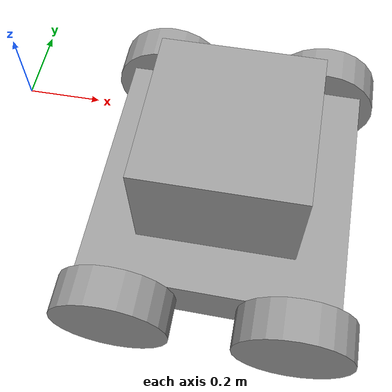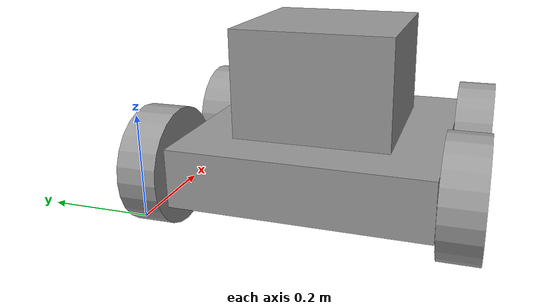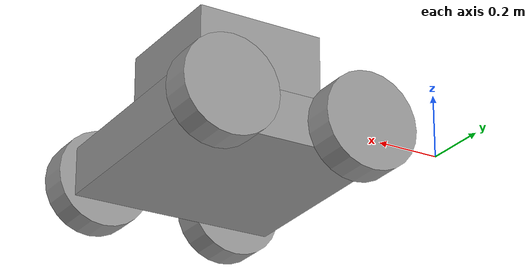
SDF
<?xml version='1.0'?>
<sdf version='1.6'>
  <model name='JetBot'>
    <link name='link_0'>
      <inertial>
        <mass>1</mass>
        <inertia>
          <ixx>0.166667</ixx>
          <ixy>0</ixy>
          <ixz>0</ixz>
          <iyy>0.166667</iyy>
          <iyz>0</iyz>
          <izz>0.166667</izz>
        </inertia>
        <pose frame=''>0 0 0 0 -0 0</pose>
      </inertial>
      <pose frame=''>0.603128 -0.202461 -0.058333 0 -0 0</pose>
      <gravity>1</gravity>
      <self_collide>0</self_collide>
      <kinematic>0</kinematic>
      <enable_wind>0</enable_wind>
      <visual name='visual'>
        <pose frame=''>0 0 0 0 0 -0.01</pose>
        <geometry>
          <box>
            <size>0.65 0.65 0.15</size>
          </box>
        </geometry>
        <material>
          <lighting>1</lighting>
          <script>
            <uri>file://media/materials/scripts/gazebo.material</uri>
            <name>Gazebo/Grey</name>
          </script>
          <shader type='vertex'>
            <normal_map>__default__</normal_map>
          </shader>
          <ambient>0.3 0.3 0.3 1</ambient>
          <diffuse>0.7 0.7 0.7 1</diffuse>
          <specular>0.01 0.01 0.01 1</specular>
          <emissive>0 0 0 1</emissive>
        </material>
        <transparency>0</transparency>
        <cast_shadows>1</cast_shadows>
      </visual>
      <collision name='collision'>
        <laser_retro>0</laser_retro>
        <max_contacts>10</max_contacts>
        <pose frame=''>0 0 0 0 -0 0</pose>
        <geometry>
          <box>
            <size>0.65 0.65 0.15</size>
          </box>
        </geometry>
        <surface>
          <friction>
            <ode>
              <mu>1</mu>
              <mu2>1</mu2>
              <fdir1>0 0 0</fdir1>
              <slip1>0</slip1>
              <slip2>0</slip2>
            </ode>
            <torsional>
              <coefficient>1</coefficient>
              <patch_radius>0</patch_radius>
              <surface_radius>0</surface_radius>
              <use_patch_radius>1</use_patch_radius>
              <ode>
                <slip>0</slip>
              </ode>
            </torsional>
          </friction>
          <bounce>
            <restitution_coefficient>0</restitution_coefficient>
            <threshold>1e+06</threshold>
          </bounce>
          <contact>
            <collide_without_contact>0</collide_without_contact>
            <collide_without_contact_bitmask>1</collide_without_contact_bitmask>
            <collide_bitmask>1</collide_bitmask>
            <ode>
              <soft_cfm>0</soft_cfm>
              <soft_erp>0.2</soft_erp>
              <kp>1e+13</kp>
              <kd>1</kd>
              <max_vel>0.01</max_vel>
              <min_depth>0</min_depth>
            </ode>
            <bullet>
              <split_impulse>1</split_impulse>
              <split_impulse_penetration_threshold>-0.01</split_impulse_penetration_threshold>
              <soft_cfm>0</soft_cfm>
              <soft_erp>0.2</soft_erp>
              <kp>1e+13</kp>
              <kd>1</kd>
            </bullet>
          </contact>
        </surface>
      </collision>
    </link>
    <link name='link_4_clone_1_clone'>
      <inertial>
        <mass>1</mass>
        <inertia>
          <ixx>0.145833</ixx>
          <ixy>0</ixy>
          <ixz>0</ixz>
          <iyy>0.145833</iyy>
          <iyz>0</iyz>
          <izz>0.125</izz>
        </inertia>
        <pose frame=''>0 0 0 0 -0 0</pose>
      </inertial>
      <pose frame=''>0.378128 -0.577461 -0.058333 1.5708 -0 0</pose>
      <gravity>1</gravity>
      <self_collide>0</self_collide>
      <kinematic>0</kinematic>
      <enable_wind>0</enable_wind>
      <visual name='visual'>
        <pose frame=''>0 0 0 0 -0 0</pose>
        <geometry>
          <cylinder>
            <radius>0.15</radius>
            <length>0.1</length>
          </cylinder>
        </geometry>
        <material>
          <lighting>1</lighting>
          <script>
            <uri>file://media/materials/scripts/gazebo.material</uri>
            <name>Gazebo/Grey</name>
          </script>
          <shader type='vertex'>
            <normal_map>__default__</normal_map>
          </shader>
          <ambient>0.3 0.3 0.3 1</ambient>
          <diffuse>0.7 0.7 0.7 1</diffuse>
          <specular>0.01 0.01 0.01 1</specular>
          <emissive>0 0 0 1</emissive>
        </material>
        <transparency>0</transparency>
        <cast_shadows>1</cast_shadows>
      </visual>
      <collision name='collision'>
        <laser_retro>0</laser_retro>
        <max_contacts>10</max_contacts>
        <pose frame=''>0 0 0 0 -0 0</pose>
        <geometry>
          <cylinder>
            <radius>0.15</radius>
            <length>0.1</length>
          </cylinder>
        </geometry>
        <surface>
          <friction>
            <ode>
              <mu>1</mu>
              <mu2>1</mu2>
              <fdir1>0 0 0</fdir1>
              <slip1>0</slip1>
              <slip2>0</slip2>
            </ode>
            <torsional>
              <coefficient>1</coefficient>
              <patch_radius>0</patch_radius>
              <surface_radius>0</surface_radius>
              <use_patch_radius>1</use_patch_radius>
              <ode>
                <slip>0</slip>
              </ode>
            </torsional>
          </friction>
          <bounce>
            <restitution_coefficient>0</restitution_coefficient>
            <threshold>1e+06</threshold>
          </bounce>
          <contact>
            <collide_without_contact>0</collide_without_contact>
            <collide_without_contact_bitmask>1</collide_without_contact_bitmask>
            <collide_bitmask>1</collide_bitmask>
            <ode>
              <soft_cfm>0</soft_cfm>
              <soft_erp>0.2</soft_erp>
              <kp>1e+13</kp>
              <kd>1</kd>
              <max_vel>0.01</max_vel>
              <min_depth>0</min_depth>
            </ode>
            <bullet>
              <split_impulse>1</split_impulse>
              <split_impulse_penetration_threshold>-0.01</split_impulse_penetration_threshold>
              <soft_cfm>0</soft_cfm>
              <soft_erp>0.2</soft_erp>
              <kp>1e+13</kp>
              <kd>1</kd>
            </bullet>
          </contact>
        </surface>
      </collision>
    </link>
    <link name='link_4_clone_1_clone_clone'>
      <inertial>
        <mass>1</mass>
        <inertia>
          <ixx>0.145833</ixx>
          <ixy>0</ixy>
          <ixz>0</ixz>
          <iyy>0.145833</iyy>
          <iyz>0</iyz>
          <izz>0.125</izz>
        </inertia>
        <pose frame=''>0 0 0 0 -0 0</pose>
      </inertial>
      <pose frame=''>0.378128 0.172539 -0.058333 1.5708 -0 0</pose>
      <gravity>1</gravity>
      <self_collide>0</self_collide>
      <kinematic>0</kinematic>
      <enable_wind>0</enable_wind>
      <visual name='visual'>
        <pose frame=''>0 0 0 0 -0 0</pose>
        <geometry>
          <cylinder>
            <radius>0.15</radius>
            <length>0.1</length>
          </cylinder>
        </geometry>
        <material>
          <lighting>1</lighting>
          <script>
            <uri>file://media/materials/scripts/gazebo.material</uri>
            <name>Gazebo/Grey</name>
          </script>
          <shader type='vertex'>
            <normal_map>__default__</normal_map>
          </shader>
          <ambient>0.3 0.3 0.3 1</ambient>
          <diffuse>0.7 0.7 0.7 1</diffuse>
          <specular>0.01 0.01 0.01 1</specular>
          <emissive>0 0 0 1</emissive>
        </material>
        <transparency>0</transparency>
        <cast_shadows>1</cast_shadows>
      </visual>
      <collision name='collision'>
        <laser_retro>0</laser_retro>
        <max_contacts>10</max_contacts>
        <pose frame=''>0 0 0 0 -0 0</pose>
        <geometry>
          <cylinder>
            <radius>0.15</radius>
            <length>0.1</length>
          </cylinder>
        </geometry>
        <surface>
          <friction>
            <ode>
              <mu>1</mu>
              <mu2>1</mu2>
              <fdir1>0 0 0</fdir1>
              <slip1>0</slip1>
              <slip2>0</slip2>
            </ode>
            <torsional>
              <coefficient>1</coefficient>
              <patch_radius>0</patch_radius>
              <surface_radius>0</surface_radius>
              <use_patch_radius>1</use_patch_radius>
              <ode>
                <slip>0</slip>
              </ode>
            </torsional>
          </friction>
          <bounce>
            <restitution_coefficient>0</restitution_coefficient>
            <threshold>1e+06</threshold>
          </bounce>
          <contact>
            <collide_without_contact>0</collide_without_contact>
            <collide_without_contact_bitmask>1</collide_without_contact_bitmask>
            <collide_bitmask>1</collide_bitmask>
            <ode>
              <soft_cfm>0</soft_cfm>
              <soft_erp>0.2</soft_erp>
              <kp>1e+13</kp>
              <kd>1</kd>
              <max_vel>0.01</max_vel>
              <min_depth>0</min_depth>
            </ode>
            <bullet>
              <split_impulse>1</split_impulse>
              <split_impulse_penetration_threshold>-0.01</split_impulse_penetration_threshold>
              <soft_cfm>0</soft_cfm>
              <soft_erp>0.2</soft_erp>
              <kp>1e+13</kp>
              <kd>1</kd>
            </bullet>
          </contact>
        </surface>
      </collision>
    </link>
    <link name='link_4_clone_1_clone_clone_0'>
      <inertial>
        <mass>1</mass>
        <inertia>
          <ixx>0.145833</ixx>
          <ixy>0</ixy>
          <ixz>0</ixz>
          <iyy>0.145833</iyy>
          <iyz>0</iyz>
          <izz>0.125</izz>
        </inertia>
        <pose frame=''>0 0 0 0 -0 0</pose>
      </inertial>
      <pose frame=''>0.828128 -0.577461 -0.058333 1.5708 -0 0</pose>
      <gravity>1</gravity>
      <self_collide>0</self_collide>
      <kinematic>0</kinematic>
      <enable_wind>0</enable_wind>
      <visual name='visual'>
        <pose frame=''>0 0 0 0 -0 0</pose>
        <geometry>
          <cylinder>
            <radius>0.15</radius>
            <length>0.1</length>
          </cylinder>
        </geometry>
        <material>
          <lighting>1</lighting>
          <script>
            <uri>file://media/materials/scripts/gazebo.material</uri>
            <name>Gazebo/Grey</name>
          </script>
          <shader type='vertex'>
            <normal_map>__default__</normal_map>
          </shader>
          <ambient>0.3 0.3 0.3 1</ambient>
          <diffuse>0.7 0.7 0.7 1</diffuse>
          <specular>0.01 0.01 0.01 1</specular>
          <emissive>0 0 0 1</emissive>
        </material>
        <transparency>0</transparency>
        <cast_shadows>1</cast_shadows>
      </visual>
      <collision name='collision'>
        <laser_retro>0</laser_retro>
        <max_contacts>10</max_contacts>
        <pose frame=''>0 0 0 0 -0 0</pose>
        <geometry>
          <cylinder>
            <radius>0.15</radius>
            <length>0.1</length>
          </cylinder>
        </geometry>
        <surface>
          <friction>
            <ode>
              <mu>1</mu>
              <mu2>1</mu2>
              <fdir1>0 0 0</fdir1>
              <slip1>0</slip1>
              <slip2>0</slip2>
            </ode>
            <torsional>
              <coefficient>1</coefficient>
              <patch_radius>0</patch_radius>
              <surface_radius>0</surface_radius>
              <use_patch_radius>1</use_patch_radius>
              <ode>
                <slip>0</slip>
              </ode>
            </torsional>
          </friction>
          <bounce>
            <restitution_coefficient>0</restitution_coefficient>
            <threshold>1e+06</threshold>
          </bounce>
          <contact>
            <collide_without_contact>0</collide_without_contact>
            <collide_without_contact_bitmask>1</collide_without_contact_bitmask>
            <collide_bitmask>1</collide_bitmask>
            <ode>
              <soft_cfm>0</soft_cfm>
              <soft_erp>0.2</soft_erp>
              <kp>1e+13</kp>
              <kd>1</kd>
              <max_vel>0.01</max_vel>
              <min_depth>0</min_depth>
            </ode>
            <bullet>
              <split_impulse>1</split_impulse>
              <split_impulse_penetration_threshold>-0.01</split_impulse_penetration_threshold>
              <soft_cfm>0</soft_cfm>
              <soft_erp>0.2</soft_erp>
              <kp>1e+13</kp>
              <kd>1</kd>
            </bullet>
          </contact>
        </surface>
      </collision>
    </link>
    <link name='link_4_clone_1_clone_clone_1'>
      <inertial>
        <mass>1</mass>
        <inertia>
          <ixx>0.145833</ixx>
          <ixy>0</ixy>
          <ixz>0</ixz>
          <iyy>0.145833</iyy>
          <iyz>0</iyz>
          <izz>0.125</izz>
        </inertia>
        <pose frame=''>0 0 0 0 -0 0</pose>
      </inertial>
      <pose frame=''>0.828128 0.172539 -0.058333 1.5708 -0 0</pose>
      <gravity>1</gravity>
      <self_collide>0</self_collide>
      <kinematic>0</kinematic>
      <enable_wind>0</enable_wind>
      <visual name='visual'>
        <pose frame=''>0 0 0 0 -0 0</pose>
        <geometry>
          <cylinder>
            <radius>0.15</radius>
            <length>0.1</length>
          </cylinder>
        </geometry>
        <material>
          <lighting>1</lighting>
          <script>
            <uri>file://media/materials/scripts/gazebo.material</uri>
            <name>Gazebo/Grey</name>
          </script>
          <shader type='vertex'>
            <normal_map>__default__</normal_map>
          </shader>
          <ambient>0.3 0.3 0.3 1</ambient>
          <diffuse>0.7 0.7 0.7 1</diffuse>
          <specular>0.01 0.01 0.01 1</specular>
          <emissive>0 0 0 1</emissive>
        </material>
        <transparency>0</transparency>
        <cast_shadows>1</cast_shadows>
      </visual>
      <collision name='collision'>
        <laser_retro>0</laser_retro>
        <max_contacts>10</max_contacts>
        <pose frame=''>0 0 0 0 -0 0</pose>
        <geometry>
          <cylinder>
            <radius>0.15</radius>
            <length>0.1</length>
          </cylinder>
        </geometry>
        <surface>
          <friction>
            <ode>
              <mu>1</mu>
              <mu2>1</mu2>
              <fdir1>0 0 0</fdir1>
              <slip1>0</slip1>
              <slip2>0</slip2>
            </ode>
            <torsional>
              <coefficient>1</coefficient>
              <patch_radius>0</patch_radius>
              <surface_radius>0</surface_radius>
              <use_patch_radius>1</use_patch_radius>
              <ode>
                <slip>0</slip>
              </ode>
            </torsional>
          </friction>
          <bounce>
            <restitution_coefficient>0</restitution_coefficient>
            <threshold>1e+06</threshold>
          </bounce>
          <contact>
            <collide_without_contact>0</collide_without_contact>
            <collide_without_contact_bitmask>1</collide_without_contact_bitmask>
            <collide_bitmask>1</collide_bitmask>
            <ode>
              <soft_cfm>0</soft_cfm>
              <soft_erp>0.2</soft_erp>
              <kp>1e+13</kp>
              <kd>1</kd>
              <max_vel>0.01</max_vel>
              <min_depth>0</min_depth>
            </ode>
            <bullet>
              <split_impulse>1</split_impulse>
              <split_impulse_penetration_threshold>-0.01</split_impulse_penetration_threshold>
              <soft_cfm>0</soft_cfm>
              <soft_erp>0.2</soft_erp>
              <kp>1e+13</kp>
              <kd>1</kd>
            </bullet>
          </contact>
        </surface>
      </collision>
    </link>
    <link name='link_5'>
      <inertial>
        <mass>1</mass>
        <inertia>
          <ixx>0.166667</ixx>
          <ixy>0</ixy>
          <ixz>0</ixz>
          <iyy>0.166667</iyy>
          <iyz>0</iyz>
          <izz>0.166667</izz>
        </inertia>
        <pose frame=''>0 0 0 0 -0 0</pose>
      </inertial>
      <pose frame=''>0.603128 -0.202461 0.141667 0 -0 0</pose>
      <gravity>1</gravity>
      <self_collide>0</self_collide>
      <kinematic>0</kinematic>
      <enable_wind>0</enable_wind>
      <visual name='visual'>
        <pose frame=''>0 0 0 0 -0 0</pose>
        <geometry>
          <box>
            <size>0.4 0.4 0.3</size>
          </box>
        </geometry>
        <material>
          <lighting>1</lighting>
          <script>
            <uri>file://media/materials/scripts/gazebo.material</uri>
            <name>Gazebo/Grey</name>
          </script>
          <shader type='vertex'>
            <normal_map>__default__</normal_map>
          </shader>
          <ambient>0.3 0.3 0.3 1</ambient>
          <diffuse>0.7 0.7 0.7 1</diffuse>
          <specular>0.01 0.01 0.01 1</specular>
          <emissive>0 0 0 1</emissive>
        </material>
        <transparency>0</transparency>
        <cast_shadows>1</cast_shadows>
      </visual>
      <collision name='collision'>
        <laser_retro>0</laser_retro>
        <max_contacts>10</max_contacts>
        <pose frame=''>0 0 0 0 -0 0</pose>
        <geometry>
          <box>
            <size>0.4 0.4 0.3</size>
          </box>
        </geometry>
        <surface>
          <friction>
            <ode>
              <mu>1</mu>
              <mu2>1</mu2>
              <fdir1>0 0 0</fdir1>
              <slip1>0</slip1>
              <slip2>0</slip2>
            </ode>
            <torsional>
              <coefficient>1</coefficient>
              <patch_radius>0</patch_radius>
              <surface_radius>0</surface_radius>
              <use_patch_radius>1</use_patch_radius>
              <ode>
                <slip>0</slip>
              </ode>
            </torsional>
          </friction>
          <bounce>
            <restitution_coefficient>0</restitution_coefficient>
            <threshold>1e+06</threshold>
          </bounce>
          <contact>
            <collide_without_contact>0</collide_without_contact>
            <collide_without_contact_bitmask>1</collide_without_contact_bitmask>
            <collide_bitmask>1</collide_bitmask>
            <ode>
              <soft_cfm>0</soft_cfm>
              <soft_erp>0.2</soft_erp>
              <kp>1e+13</kp>
              <kd>1</kd>
              <max_vel>0.01</max_vel>
              <min_depth>0</min_depth>
            </ode>
            <bullet>
              <split_impulse>1</split_impulse>
              <split_impulse_penetration_threshold>-0.01</split_impulse_penetration_threshold>
              <soft_cfm>0</soft_cfm>
              <soft_erp>0.2</soft_erp>
              <kp>1e+13</kp>
              <kd>1</kd>
            </bullet>
          </contact>
        </surface>
      </collision>
    </link>
    <joint name='link_0_JOINT_11' type='fixed'>
      <parent>link_0</parent>
      <child>link_5</child>
      <pose frame=''>0 0 0 0 -0 0</pose>
      <physics>
        <ode>
          <limit>
            <cfm>0</cfm>
            <erp>0.2</erp>
          </limit>
          <suspension>
            <cfm>0</cfm>
            <erp>0.2</erp>
          </suspension>
        </ode>
      </physics>
    </joint>
    <joint name='link_0_JOINT_6' type='revolute'>
      <parent>link_0</parent>
      <child>link_4_clone_1_clone</child>
      <pose frame=''>0 0 0 0 -0 0</pose>
      <axis>
        <xyz>1 0 0</xyz>
        <use_parent_model_frame>0</use_parent_model_frame>
        <limit>
          <lower>-1.79769e+308</lower>
          <upper>1.79769e+308</upper>
          <effort>-1</effort>
          <velocity>-1</velocity>
        </limit>
        <dynamics>
          <spring_reference>0</spring_reference>
          <spring_stiffness>0</spring_stiffness>
          <damping>0</damping>
        </dynamics>
      </axis>
      <physics>
        <ode>
          <limit>
            <cfm>0</cfm>
            <erp>0.2</erp>
          </limit>
          <suspension>
            <cfm>0</cfm>
            <erp>0.2</erp>
          </suspension>
        </ode>
      </physics>
    </joint>
    <joint name='link_0_JOINT_7' type='revolute'>
      <parent>link_0</parent>
      <child>link_4_clone_1_clone_clone_0</child>
      <pose frame=''>0 0 0 0 -0 0</pose>
      <axis>
        <xyz>1 0 0</xyz>
        <use_parent_model_frame>0</use_parent_model_frame>
        <limit>
          <lower>-1.79769e+308</lower>
          <upper>1.79769e+308</upper>
          <effort>-1</effort>
          <velocity>-1</velocity>
        </limit>
        <dynamics>
          <spring_reference>0</spring_reference>
          <spring_stiffness>0</spring_stiffness>
          <damping>0</damping>
        </dynamics>
      </axis>
      <physics>
        <ode>
          <limit>
            <cfm>0</cfm>
            <erp>0.2</erp>
          </limit>
          <suspension>
            <cfm>0</cfm>
            <erp>0.2</erp>
          </suspension>
        </ode>
      </physics>
    </joint>
    <joint name='link_0_JOINT_8' type='revolute'>
      <parent>link_0</parent>
      <child>link_4_clone_1_clone_clone</child>
      <pose frame=''>0 0 0 0 -0 0</pose>
      <axis>
        <xyz>1 0 0</xyz>
        <use_parent_model_frame>0</use_parent_model_frame>
        <limit>
          <lower>-1.79769e+308</lower>
          <upper>1.79769e+308</upper>
          <effort>-1</effort>
          <velocity>-1</velocity>
        </limit>
        <dynamics>
          <spring_reference>0</spring_reference>
          <spring_stiffness>0</spring_stiffness>
          <damping>0</damping>
        </dynamics>
      </axis>
      <physics>
        <ode>
          <limit>
            <cfm>0</cfm>
            <erp>0.2</erp>
          </limit>
          <suspension>
            <cfm>0</cfm>
            <erp>0.2</erp>
          </suspension>
        </ode>
      </physics>
    </joint>
    <joint name='link_0_JOINT_9' type='revolute'>
      <parent>link_0</parent>
      <child>link_4_clone_1_clone_clone_1</child>
      <pose frame=''>0 0 0 0 -0 0</pose>
      <axis>
        <xyz>1 0 0</xyz>
        <use_parent_model_frame>0</use_parent_model_frame>
        <limit>
          <lower>-1.79769e+308</lower>
          <upper>1.79769e+308</upper>
          <effort>-1</effort>
          <velocity>-1</velocity>
        </limit>
        <dynamics>
          <spring_reference>0</spring_reference>
          <spring_stiffness>0</spring_stiffness>
          <damping>0</damping>
        </dynamics>
      </axis>
      <physics>
        <ode>
          <limit>
            <cfm>0</cfm>
            <erp>0.2</erp>
          </limit>
          <suspension>
            <cfm>0</cfm>
            <erp>0.2</erp>
          </suspension>
        </ode>
      </physics>
    </joint>
    <static>0</static>
    <allow_auto_disable>1</allow_auto_disable>
  </model>
</sdf>
